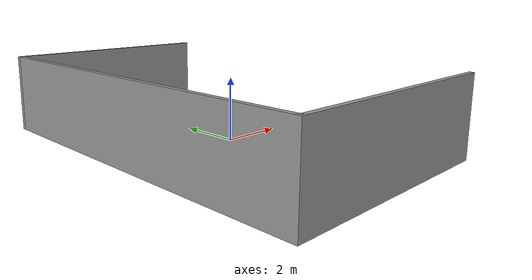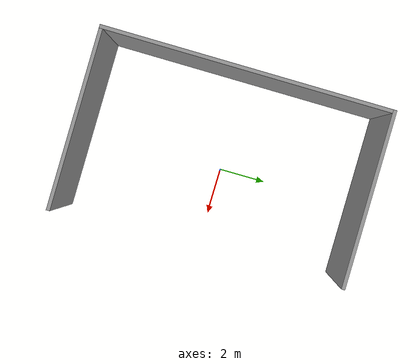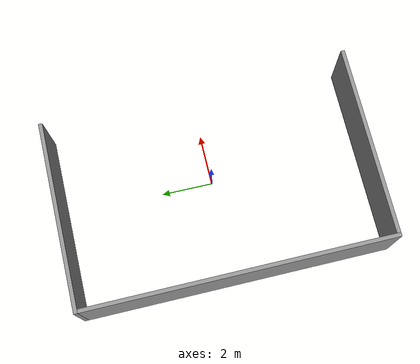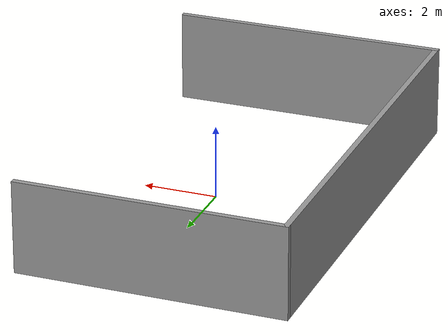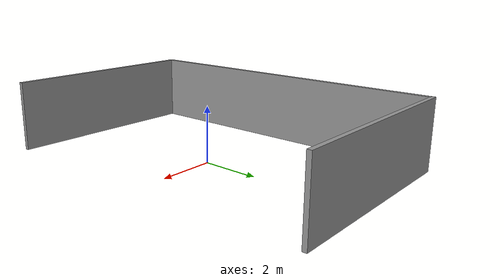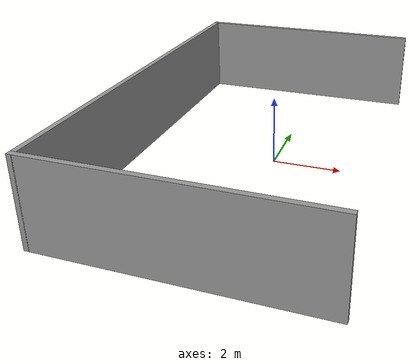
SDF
<?xml version='1.0'?>
<sdf version='1.6'>
  <model name='wall1'>
    <pose frame=''>-0.426959 -0.061428 0 0 -0 0</pose>
    <link name='Wall_31'>
      <collision name='Wall_31_Collision'>
        <geometry>
          <box>
            <size>7.25 0.15 2.5</size>
          </box>
        </geometry>
        <pose frame=''>0 0 1.25 0 -0 0</pose>
      </collision>
      <visual name='Wall_31_Visual'>
        <pose frame=''>0 0 1.25 0 -0 0</pose>
        <geometry>
          <box>
            <size>7.25 0.15 2.5</size>
          </box>
        </geometry>
        <material>
          <script>
            <uri>file://media/materials/scripts/gazebo.material</uri>
            <name>Gazebo/Grey</name>
          </script>
          <ambient>1 1 1 1</ambient>
        </material>
        <meta>
          <layer>0</layer>
        </meta>
      </visual>
      <pose frame=''>-0.125 5.925 0 0 -0 3.14159</pose>
    </link>
    <link name='Wall_32'>
      <collision name='Wall_32_Collision'>
        <geometry>
          <box>
            <size>12 0.15 2.5</size>
          </box>
        </geometry>
        <pose frame=''>0 0 1.25 0 -0 0</pose>
      </collision>
      <visual name='Wall_32_Visual'>
        <pose frame=''>0 0 1.25 0 -0 0</pose>
        <geometry>
          <box>
            <size>12 0.15 2.5</size>
          </box>
        </geometry>
        <material>
          <script>
            <uri>file://media/materials/scripts/gazebo.material</uri>
            <name>Gazebo/Grey</name>
          </script>
          <ambient>1 1 1 1</ambient>
        </material>
        <meta>
          <layer>0</layer>
        </meta>
      </visual>
      <pose frame=''>-3.675 0 0 0 -0 -1.5708</pose>
    </link>
    <link name='Wall_33'>
      <collision name='Wall_33_Collision'>
        <geometry>
          <box>
            <size>7.5 0.15 2.5</size>
          </box>
        </geometry>
        <pose frame=''>0 0 1.25 0 -0 0</pose>
      </collision>
      <visual name='Wall_33_Visual'>
        <pose frame=''>0 0 1.25 0 -0 0</pose>
        <geometry>
          <box>
            <size>7.5 0.15 2.5</size>
          </box>
        </geometry>
        <material>
          <script>
            <uri>file://media/materials/scripts/gazebo.material</uri>
            <name>Gazebo/Grey</name>
          </script>
          <ambient>1 1 1 1</ambient>
        </material>
        <meta>
          <layer>0</layer>
        </meta>
      </visual>
      <pose frame=''>0 -5.925 0 0 -0 0</pose>
    </link>
    <static>1</static>
  </model>
</sdf>
